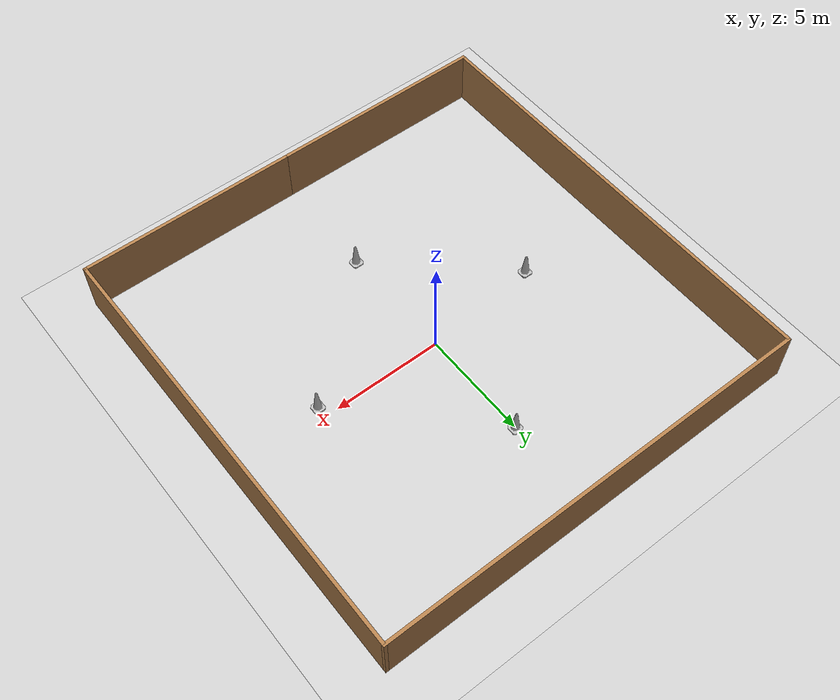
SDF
<sdf version="1.7">
 <world name="default">
  <light name="sun" type="directional">
   <pose>0 0 10 0 -0 0</pose>
   <diffuse>0.8 0.8 0.8 1</diffuse>
   <specular>0.2 0.2 0.2 1</specular>
   <attenuation>
    <range>1000</range>
    <constant>0.9</constant>
    <linear>0.01</linear>
    <quadratic>0.001</quadratic>
   </attenuation>
   <direction>-0.5 0.1 -0.9</direction>
   <spot><inner_angle>0</inner_angle><outer_angle>0</outer_angle><falloff>0</falloff></spot>
  </light>
  <model name="ground_plane">
   <static>1</static>
   <link name="link">
    <collision name="collision">
     <geometry><plane><normal>0 0 1</normal><size>100 100</size></plane></geometry>
     <surface>
      <contact><collide_bitmask>65535</collide_bitmask></contact>
      <friction><ode><mu>100</mu><mu2>50</mu2></ode></friction>
     </surface>
    </collision>
    <visual name="visual">
     <cast_shadows>0</cast_shadows>
     <geometry><plane><normal>0 0 1</normal><size>100 100</size></plane></geometry>
     <material>
      <script><uri>file://media/materials/scripts/gazebo.material</uri><name>Gazebo/Grey</name></script>
     </material>
    </visual>
   </link>
  </model>
  <gravity>0 0 -9.8</gravity>
  <magnetic_field>6e-06 2.3e-05 -4.2e-05</magnetic_field>
  <atmosphere type="adiabatic"/>
  <physics type="ode">
   <max_step_size>0.001</max_step_size>
   <real_time_factor>1</real_time_factor>
   <real_time_update_rate>1000</real_time_update_rate>
  </physics>
  <scene><ambient>0.4 0.4 0.4 1</ambient><background>0.7 0.7 0.7 1</background><shadows>1</shadows></scene>
  <audio><device>default</device></audio>
  <spherical_coordinates>
   <surface_model>EARTH_WGS84</surface_model>
   <latitude_deg>0</latitude_deg>
   <longitude_deg>0</longitude_deg>
   <elevation>0</elevation>
   <heading_deg>0</heading_deg>
  </spherical_coordinates>
  <model name="test_world">
   <pose>-0.00874 -0.383029 0 0 -0 0</pose>
   <link name="Wall_12">
    <collision name="Wall_12_Collision">
     <geometry><box><size>10 0.15 2.5</size></box></geometry>
     <pose>0 0 1.25 0 -0 0</pose>
    </collision>
    <visual name="Wall_12_Visual">
     <pose>0 0 1.25 0 -0 0</pose>
     <geometry><box><size>10 0.15 2.5</size></box></geometry>
     <material>
      <script><uri>file://media/materials/scripts/gazebo.material</uri><name>Gazebo/Wood</name></script>
      <ambient>1 1 1 1</ambient>
     </material>
     <meta><layer>0</layer></meta>
    </visual>
    <pose>5 -10.05 0 0 -0 0</pose>
   </link>
   <link name="Wall_13">
    <collision name="Wall_13_Collision">
     <geometry><box><size>20.25 0.15 2.5</size></box></geometry>
     <pose>0 0 1.25 0 -0 0</pose>
    </collision>
    <visual name="Wall_13_Visual">
     <pose>0 0 1.25 0 -0 0</pose>
     <geometry><box><size>20.25 0.15 2.5</size></box></geometry>
     <material>
      <script><uri>file://media/materials/scripts/gazebo.material</uri><name>Gazebo/Wood</name></script>
      <ambient>1 1 1 1</ambient>
     </material>
     <meta><layer>0</layer></meta>
    </visual>
    <pose>9.925 -0 0 0 -0 1.5708</pose>
   </link>
   <link name="Wall_14">
    <collision name="Wall_14_Collision">
     <geometry><box><size>20 0.15 2.5</size></box></geometry>
     <pose>0 0 1.25 0 -0 0</pose>
    </collision>
    <visual name="Wall_14_Visual">
     <pose>0 0 1.25 0 -0 0</pose>
     <geometry><box><size>20 0.15 2.5</size></box></geometry>
     <material>
      <script><uri>file://media/materials/scripts/gazebo.material</uri><name>Gazebo/Wood</name></script>
      <ambient>1 1 1 1</ambient>
     </material>
     <meta><layer>0</layer></meta>
    </visual>
    <pose>0 10.05 0 0 -0 3.14159</pose>
   </link>
   <link name="Wall_15">
    <collision name="Wall_15_Collision">
     <geometry><box><size>20.25 0.15 2.5</size></box></geometry>
     <pose>0 0 1.25 0 -0 0</pose>
    </collision>
    <visual name="Wall_15_Visual">
     <pose>0 0 1.25 0 -0 0</pose>
     <geometry><box><size>20.25 0.15 2.5</size></box></geometry>
     <material>
      <script><uri>file://media/materials/scripts/gazebo.material</uri><name>Gazebo/Wood</name></script>
      <ambient>1 1 1 1</ambient>
     </material>
     <meta><layer>0</layer></meta>
    </visual>
    <pose>-9.925 -0 0 0 -0 -1.5708</pose>
   </link>
   <link name="Wall_16">
    <collision name="Wall_16_Collision">
     <geometry><box><size>10.25 0.15 2.5</size></box></geometry>
     <pose>0 0 1.25 0 -0 0</pose>
    </collision>
    <visual name="Wall_16_Visual">
     <pose>0 0 1.25 0 -0 0</pose>
     <geometry><box><size>10.25 0.15 2.5</size></box></geometry>
     <material>
      <script><uri>file://media/materials/scripts/gazebo.material</uri><name>Gazebo/Wood</name></script>
      <ambient>1 1 1 1</ambient>
     </material>
     <meta><layer>0</layer></meta>
    </visual>
    <pose>-4.875 -10.05 0 0 -0 0</pose>
   </link>
   <static>1</static>
  </model>
  <model name="Construction Cone">
   <link name="link">
    <collision name="collision">
     <geometry>
      <mesh><scale>10 10 10</scale><uri>model://construction_cone/meshes/construction_cone.dae</uri></mesh>
     </geometry>
    </collision>
    <visual name="visual">
     <geometry>
      <mesh><scale>10 10 10</scale><uri>model://construction_cone/meshes/construction_cone.dae</uri></mesh>
     </geometry>
    </visual>
    <inertial>
     <inertia><ixx>1</ixx><ixy>0</ixy><ixz>0</ixz><iyy>1</iyy><iyz>0</iyz><izz>1</izz></inertia>
     <mass>1</mass>
    </inertial>
   </link>
   <pose>-5.33487 -0.525761 -0 0 -1e-06 0</pose>
  </model>
  <model name="Construction Cone_0">
   <link name="link">
    <collision name="collision">
     <geometry>
      <mesh><scale>10 10 10</scale><uri>model://construction_cone/meshes/construction_cone.dae</uri></mesh>
     </geometry>
    </collision>
    <visual name="visual">
     <geometry>
      <mesh><scale>10 10 10</scale><uri>model://construction_cone/meshes/construction_cone.dae</uri></mesh>
     </geometry>
    </visual>
    <inertial>
     <inertia><ixx>1</ixx><ixy>0</ixy><ixz>0</ixz><iyy>1</iyy><iyz>0</iyz><izz>1</izz></inertia>
     <mass>1</mass>
    </inertial>
   </link>
   <pose>5.58553 -0.526102 -1e-05 -1e-06 0 0</pose>
  </model>
  <model name="Construction Cone_1">
   <link name="link">
    <collision name="collision">
     <geometry>
      <mesh><scale>10 10 10</scale><uri>model://construction_cone/meshes/construction_cone.dae</uri></mesh>
     </geometry>
    </collision>
    <visual name="visual">
     <geometry>
      <mesh><scale>10 10 10</scale><uri>model://construction_cone/meshes/construction_cone.dae</uri></mesh>
     </geometry>
    </visual>
    <inertial>
     <inertia><ixx>1</ixx><ixy>0</ixy><ixz>0</ixz><iyy>1</iyy><iyz>0</iyz><izz>1</izz></inertia>
     <mass>1</mass>
    </inertial>
   </link>
   <pose>0.044 -5.4543 -0 0 -0 0</pose>
  </model>
  <model name="Construction Cone_2">
   <link name="link">
    <collision name="collision">
     <geometry>
      <mesh><scale>10 10 10</scale><uri>model://construction_cone/meshes/construction_cone.dae</uri></mesh>
     </geometry>
    </collision>
    <visual name="visual">
     <geometry>
      <mesh><scale>10 10 10</scale><uri>model://construction_cone/meshes/construction_cone.dae</uri></mesh>
     </geometry>
    </visual>
    <inertial>
     <inertia><ixx>1</ixx><ixy>0</ixy><ixz>0</ixz><iyy>1</iyy><iyz>0</iyz><izz>1</izz></inertia>
     <mass>1</mass>
    </inertial>
   </link>
   <pose>0.017051 5.06859 -0 0 -1e-06 0</pose>
  </model>
 </world>
</sdf>
